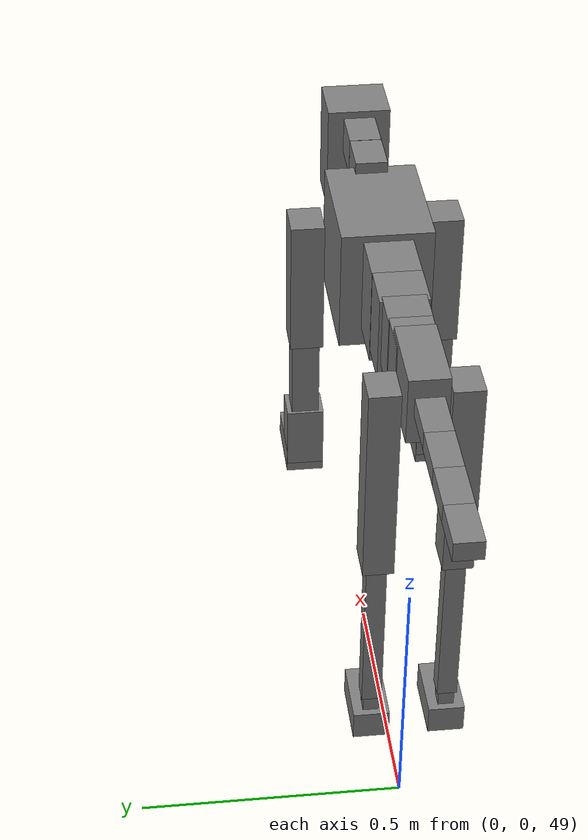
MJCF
<mujoco model="dog">

    <default>
        <joint armature="0.02" stiffness="1" damping="0.2" limited="true"/>
        <geom condim="3" friction="1 0.05 0.05" margin="0.01"/>
        <motor ctrllimited="true" ctrlrange="-1.0 1.0" forcelimited="true" gear="50"/>
    </default>

    <compiler inertiafromgeom="true" angle="radian"/>

    <option timestep="0.016" iterations="50" tolerance="1e-10" solver="Newton" jacobian="dense" cone="pyramidal"/>

    <size nconmax="20000" njmax="60000" nstack="5000000"/>
    <visual>
        <map force="0.1" zfar="30"/>
        <rgba haze="0.15 0.25 0.35 1"/>
        <quality shadowsize="2048"/>
        <global offwidth="800" offheight="800"/>
    </visual>

    <asset>
        <texture type="skybox" builtin="gradient" rgb1="0.3 0.5 0.7" rgb2="0 0 0" width="512" height="512"/>
        <texture name="texplane" type="2d" builtin="checker" rgb1=".2 .3 .4" rgb2=".1 0.15 0.2" width="512" height="512"
                 mark="cross" markrgb=".8 .8 .8"/>
        <texture name="texgeom" type="cube" builtin="flat" mark="cross" width="127" height="1278" rgb1="0.8 0.6 0.4"
                 rgb2="0.8 0.6 0.4" markrgb="1 1 1" random="0.01"/>

        <material name="matplane" reflectance="0.3" texture="texplane" texrepeat="1 1" texuniform="true"/>
        <material name="matgeom" texture="texgeom" texuniform="true" rgba="0.8 0.6 .4 1"/>
    </asset>

    <worldbody>
        <geom name="floor" pos="0 0 0" size="0 0 .25" type="plane" material="matplane" condim="3"/>

        <light directional="false" diffuse=".2 .2 .2" specular="0 0 0" pos="0 0 5" dir="0 0 -1" castshadow="false"/>
        <light mode="targetbodycom" target="torso" directional="false" diffuse=".8 .8 .8" specular="0.3 0.3 0.3"
               pos="0 0 4.0" dir="0 0 -1"/>

        <body name="root" pos="0 0 50">
            <freejoint name="root_1"/>
            <geom type="box" pos="0 0 -0.02" size="0.0774  0.0358  0.063" density="2030"/>

            <body name="spine1" pos="0.054 0 0">
                <joint name="spine1_y" axis="0 1 0" range="0 0.7" limited="true"/>
                <geom type="box" pos="0.02375 0 -0.03" size="0.04375  0.0375  0.05985" density="2030"/>

                <body name="spine2" pos="0.0612 0 0">
                    <joint name="spine2_y" axis="0 1 0" range="-0.15 0.15" limited="true"/>
                    <geom type="box" pos="0.03555  0  -0.04" size="0.04055  0.039  0.06615" density="2030"/>

                    <body name="spine3" pos="0.0730 0 0">
                        <joint name="spine3_y" axis="0 1 0" range="-0.15 0.15" limited="true"/>
                        <geom type="box" pos="0.03555  0  -0.057" size="0.04555  0.0445  0.081" density="2030"/>

                        <body name="spine4" pos="0.0780 0 0">
                            <joint name="spine4_y" axis="0 1 0" range="-0.15 0.15" limited="true"/>
                            <geom type="box" pos="0.05265  0  -0.07" size="0.05265  0.045  0.09135" density="2030"/>

                            <body name="torso" pos="0.1082 0 0">
                                <joint name="torso_y" axis="0 1 0" range="-0.15 0.15" limited="true"/>
                                <geom type="box" pos="0.11925  0  -0.085" size="0.11925  0.085  0.11745"
                                      density="2030"/>

                                <body name="neck1" pos="0.2160  0   0.0180">
                                    <joint name="neck1_y" axis="0 1 0" range="-1.2  -1" limited="true"/>
                                    <geom type="box" pos="0.0423  0  0" size="0.0423  0.03  0.036" density="2325"/>

                                    <body name="neck2" pos="0.0853  0  0">
                                        <joint name="neck2_y" axis="0 1 0" range="0.1  0" limited="true"/>
                                        <geom type="box" pos="0.0423  0  0" size="0.0423  0.03  0.036" density="2325"/>

                                        <body name="head" pos="0.0853  0  0">
                                            <joint name="head_y" axis="0 1 0" range="-0.3  -0.2" limited="true"/>
                                            <geom type="box" pos="0.0531  0  -0.055" size="0.0531  0.06  0.1044"
                                                  density="4030"/>

                                        </body>
                                    </body>
                                </body>

                                <body name="front_shoulder" pos="0.156  0   -0.0480">
                                    <joint name="front_shoulder_y" axis="0 1 0" range="-1 1.5" limited="true"/>
                                    <geom type="box" pos="0 0.13 -0.1075" size="0.0368  0.0315  0.1342" density="1158"/>
                                    <geom type="box" pos="0 -0.13 -0.1075" size="0.0368  0.0315  0.1342"
                                          density="1158"/>

                                    <body name="front_elbow" pos="0  0  -0.2151">
                                        <joint name="front_elbow_y" axis="0 1 0" range="-2 0" limited="true"/>
                                        <geom type="box" pos="0 0.13 -0.0995" size="0.0257  0.0263  0.0995"
                                              density="1081"/>
                                        <geom type="box" pos="0 -0.13 -0.0995" size="0.0257  0.0263  0.0995"
                                              density="1081"/>

                                        <body name="front_wrist" pos="0  0  -0.1990">
                                            <joint name="front_wrist_y" axis="0 1 0" range="-0.2 0" limited="true"/>
                                            <geom type="box" pos="0 0.13 -0.0489" size="0.0319  0.0355  0.0621"
                                                  density="1664"/>
                                            <geom type="box" pos="0 -0.13 -0.0489" size="0.0319  0.0355  0.0621"
                                                  density="1664"/>

                                            <body name="front_finger_end" pos="0  0  -0.0979">
                                                <joint name="front_finger_y" axis="0 1 0" range="-0.4 1"
                                                       limited="true"/>
                                                <geom type="box" pos="0.0357  0.13  -0.0088"
                                                      size="0.0655  0.0357  0.0238" density="1515"/>
                                                <geom type="box" pos="0.0357  -0.13  -0.0088"
                                                      size="0.0655  0.0357  0.0238" density="1515"/>

                                            </body>

                                        </body>
                                    </body>
                                </body>

                            </body>
                        </body>
                    </body>
                </body>
            </body>

            <body name="back_hip" pos="-0.03 0 -0.018">
                <joint name="back_hip_y" axis="0 1 0" range="-1.5 0.3" limited="true"/>
                <geom type="box" pos="0 0.07 -0.1697" size="0.0353  0.0277  0.1925" density="1154"/>
                <geom type="box" pos="0 -0.07 -0.1697" size="0.0353  0.0277  0.1925" density="1154"/>

                <body name="back_knee" pos="0  0  -0.3394">
                    <joint name="back_knee_y" axis="0 1 0" range="0 2.8" limited="true"/>
                    <geom type="box" pos="0 0.07 -0.1635" size="0.0186  0.0183  0.1790" density="1227"/>
                    <geom type="box" pos="0 -0.07 -0.1635" size="0.0186  0.0183  0.1790" density="1227"/>

                    <body name="back_ankle" pos="0  0  -0.3270">
                        <joint name="back_ankle_y" axis="0 1 0" range="-2.2 0" limited="true"/>
                        <geom type="box" pos="0 0.07 -0.0309" size="0.0146  0.0146  0.0421" density="1284"/>
                        <geom type="box" pos="0 -0.07 -0.0309" size="0.0146  0.0146  0.0421" density="1284"/>

                        <body name="back_toe_end" pos="0  0  -0.0617">
                            <joint name="back_toe_y" axis="0 1 0" range="-0.4 1" limited="true"/>
                            <geom type="box" pos="0.0334  0.07  -0.0129" size="0.0612  0.0334  0.0279" density="1515"/>
                            <geom type="box" pos="0.0334  -0.07  -0.0129" size="0.0612  0.0334  0.0279" density="1515"/>

                        </body>
                    </body>
                </body>
            </body>

            <body name="tail1" pos="-0.074 0 -0.006">
                <joint name="tail1_y" axis="0 1 0" range="-0.2 0.2" limited="true"/>
                <geom type="box" pos="-0.0536  0  0" size="0.045  0.025  0.0175" density="1587"/>

                <body name="tail2" pos="-0.09 0 0">
                    <joint name="tail2_y" axis="0 1 0" range="-0.2 0.2" limited="true"/>
                    <geom type="box" pos="-0.0536  0  0" size="0.045  0.025  0.0175" density="1587"/>

                    <body name="tail3" pos="-0.09 0 0">
                        <joint name="tail3_y" axis="0 1 0" range="-0.2 0.2" limited="true"/>
                        <geom type="box" pos="-0.0536  0  0" size="0.045  0.025  0.0175" density="1587"/>

                        <body name="tail4" pos="-0.09 0 0">
                            <joint name="tail4_y" axis="0 1 0" range="-0.2 0.2" limited="true"/>
                            <geom type="box" pos="-0.0536  0  0" size="0.045  0.025  0.0175" density="1587"/>

                        </body>
                    </body>
                </body>
            </body>
        </body>
    </worldbody>

    <actuator>
        <motor joint="spine1_y" forcerange="-150 150     "/>
        <motor joint="spine2_y" forcerange="-150 150     "/>
        <motor joint="spine3_y" forcerange="-150 150     "/>
        <motor joint="spine4_y" forcerange="-150 150     "/>
        <motor joint="torso_y" forcerange="-150 150     "/>
        <motor joint="neck1_y" forcerange="-100 100       "/>
        <motor joint="neck2_y" forcerange="-100 100       "/>
        <motor joint="head_y" forcerange="-150 150       "/>
        <motor joint="front_shoulder_y" forcerange="-141.12 168.77"/>
        <motor joint="front_elbow_y" forcerange="-180.13 110.80"/>
        <motor joint="front_wrist_y" forcerange="-141.03 142.90"/>
        <motor joint="front_finger_y" forcerange="-87.87 62.68"/>
        <motor joint="back_hip_y" forcerange="-359.25 209.78"/>
        <motor joint="back_knee_y" forcerange="-206.68 259.84"/>
        <motor joint="back_angle_y" forcerange="-67.99 65.70"/>
        <motor joint="back_toe_y" forcerange="-128.06 58.96"/>
        <motor joint="tail1_y" forcerange="-50 50     "/>
        <motor joint="tail2_y" forcerange="-50 50     "/>
        <motor joint="tail3_y" forcerange="-50 50     "/>
        <motor joint="tail4_y" forcerange="-50 50     "/>
    </actuator>
</mujoco>
